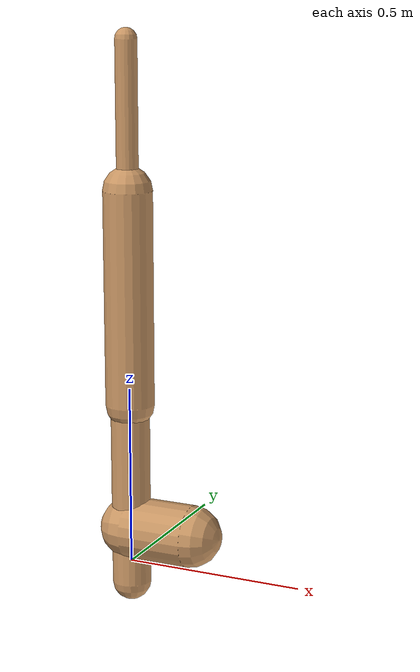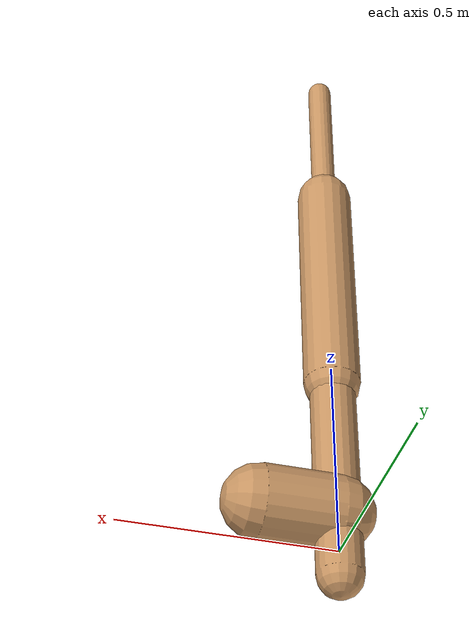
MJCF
<mujoco model="walker2d">
  <compiler angle="degree" coordinate="global" inertiafromgeom="true" />
  <default>
    <joint armature="0.01" damping=".1" limited="true" />
    <geom conaffinity="0" condim="3" contype="1" density="1000" friction="0.8 .1 .1" rgba="0.8 0.6 .4 1" />
  </default>
  <option integrator="RK4" timestep="0.002" />
  <worldbody>

    <body name="torso" pos="0 0 0.30013057806883403">
      <joint armature="0" axis="1 0 0" damping="0" limited="false" name="ignorex" pos="0 0 0" stiffness="0" type="slide" />
      <joint armature="0" axis="0 0 1" damping="0" limited="false" name="ignorez" pos="0 0 0" ref="1.25" stiffness="0" type="slide" />
      <joint armature="0" axis="0 1 0" damping="0" limited="false" name="ignorey" pos="0 0 0" stiffness="0" type="hinge" />
      <geom fromto="0 0 1.45 0 0 1.05" name="torso_geom" size="0.030136192011463694" type="capsule" />
      <body name="thigh">
        <joint axis="0 -1 0" name="thigh_joint" pos="0 0 1.05" range="-150 0" type="hinge" />
        <geom fromto="0.0 0.0 1.05 0.0 0.0 0.45783288407265754" name="thigh_geom" size="0.06783652421938803" type="capsule" />
        <body name="leg" pos="0.0 0.0 -0.14216711592734244">
          <joint axis="0 -1 0" name="leg_joint" pos="0 0 0.6" range="-150 0" type="hinge" />
          <geom fromto="0.0 0.0 0.6 0.0 0.0 -0.05796346214149159" name="leg_geom" size="0.05426921937551042" type="capsule" />
          <body name="foot" pos="0.0 0.0 -0.1579634621414916">
            <joint axis="0 -1 0" name="foot_joint" pos="0 0 0.1" range="-45 45" type="hinge" />
            <geom fromto="0.0 0.0 0.1 0.18279672269910952 0.0 0.1" name="foot_geom" size="0.08628860931646218" type="capsule" />
          </body>
        </body>
      </body>

      <body name="thigh_left">
        <joint axis="0 -1 0" name="thigh_left_joint" pos="0 0 1.05" range="-150 0" type="hinge" />
        <geom fromto="0.0 0.0 1.05 0.0 0.0 0.45783288407265754" name="thigh_left_geom" rgba=".7 .3 .6 1" size="0.06783652421938803" type="capsule" />
        <body name="leg_left" pos="0.0 0.0 -0.14216711592734244">
          <joint axis="0 -1 0" name="leg_left_joint" pos="0 0 0.6" range="-150 0" type="hinge" />
          <geom fromto="0.0 0.0 0.6 0.0 0.0 -0.05796346214149159" name="leg_left_geom" rgba=".7 .3 .6 1" size="0.05426921937551042" type="capsule" />
          <body name="foot_left" pos="0.0 0.0 -0.1579634621414916">
            <joint axis="0 -1 0" name="foot_left_joint" pos="0 0 0.1" range="-45 45" type="hinge" />
            <geom fromto="0.0 0.0 0.1 0.18279672269910952 0.0 0.1" name="foot_left_geom" rgba=".7 .3 .6 1" size="0.08628860931646218" type="capsule" />
          </body>
        </body>
      </body>
    </body>
  </worldbody>
  <actuator>

    <motor ctrllimited="true" ctrlrange="-1.0 1.0" gear="100" joint="thigh_joint" />
    <motor ctrllimited="true" ctrlrange="-1.0 1.0" gear="100" joint="leg_joint" />
    <motor ctrllimited="true" ctrlrange="-1.0 1.0" gear="100" joint="foot_joint" />
    <motor ctrllimited="true" ctrlrange="-1.0 1.0" gear="100" joint="thigh_left_joint" />
    <motor ctrllimited="true" ctrlrange="-1.0 1.0" gear="100" joint="leg_left_joint" />
    <motor ctrllimited="true" ctrlrange="-1.0 1.0" gear="100" joint="foot_left_joint" />

  </actuator>
</mujoco>
